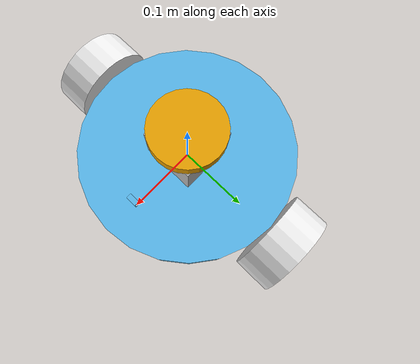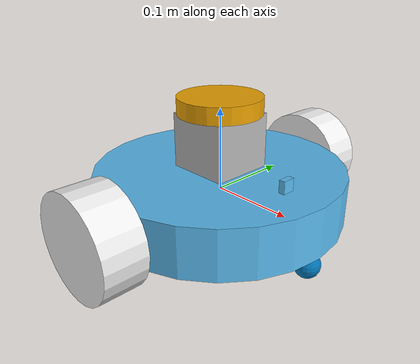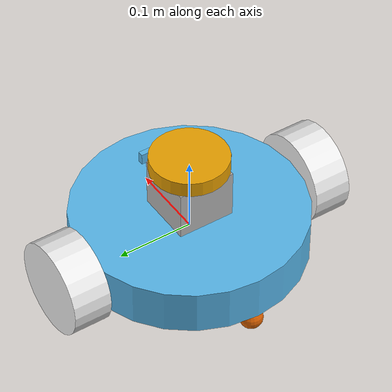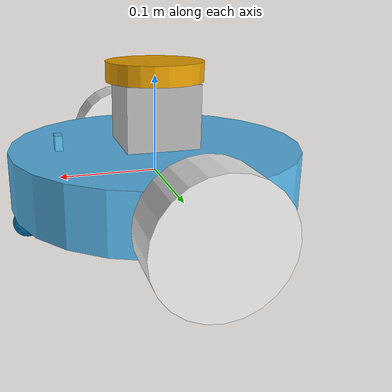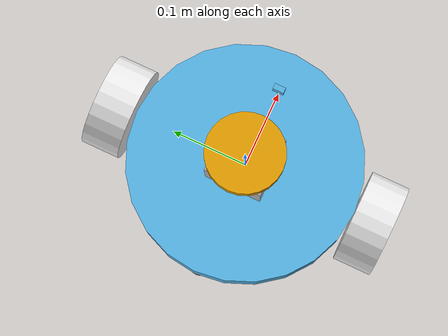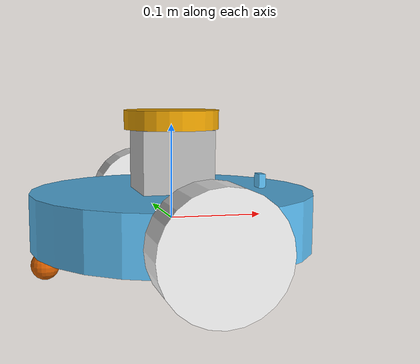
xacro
<?xml version="1.0"?>
<robot xmlns:xacro="http://www.ros.org/wiki/xacro" name="dif_rob">

    <xacro:property name="radius" value="0.15" />
    <xacro:property name="height" value="0.06" />
    <xacro:property name="mass" value="6.0" />
    <xacro:property name="wheel_radius" value="0.06" />
    <xacro:property name="casterBall_radius" value="${height/2-wheel_radius/4}" />
    <xacro:property name="lidarSup_height" value="${height/2-wheel_radius/4+0.05}"/>
    <xacro:include filename="src/robot_description/urdf/wheels.xacro"/>
    <xacro:include filename="src/robot_description/urdf/caster_ball.xacro"/>
    <xacro:include filename="src/robot_description/urdf/sensors.xacro"/>

    <link name="base_link"></link>

    <link name="chassis_link">
            <visual>
            <geometry>
                <cylinder radius="${radius}" length="${height}"/>
            </geometry>
        </visual>
        <collision>
            <geometry>
                <cylinder radius="${radius}" length="${height}"/>
            </geometry>
        </collision>
        <inertial>
            <mass value="${mass}"/>
            <inertia
                ixx="${1/12*mass*(3*(radius*radius)+height*height)}"
                ixy="0.0"
                ixz="0.0"
                iyy="${1/12*mass*(3*radius*radius+height*height)}"
                iyz="0.0"
                izz="${1/12*mass*(radius*radius)}"/>
        </inertial>
    </link>
    <joint name="chassis_to_base_link" type="fixed">
        <parent link="base_link"/>
        <child link="chassis_link"/>
        <origin xyz="0.0 0.0 0.0" />
        <axis xyz="0.0 0.0 0.0"/>
    </joint>

    <!-- Rodas -->
    <xacro:wheel prefix="right" reflect="-1" wheel_radius="${wheel_radius}" base_width="${radius}">
        <axis xyz="0 0 1"/>
    </xacro:wheel>

    <xacro:wheel prefix="left" reflect="1" wheel_radius="${wheel_radius}" base_width="${radius}">
        <axis xyz="0 0 1"/>
    </xacro:wheel>
    <gazebo reference="right_wheel">
        <mu1 value="100.0"/>
        <mu2 value="50.0"/>
    </gazebo>
    <gazebo reference="left_wheel">
        <mu1 value="100.0"/>
        <mu2 value="50.0"/>
    </gazebo>

    <!-- caster ball -->
    <xacro:caster_ball radius="${casterBall_radius}" prefix="front">
        <origin xyz="${radius-casterBall_radius} 0.0 -${height/2+wheel_radius/4}"/>
    </xacro:caster_ball>
    <xacro:caster_ball radius="${casterBall_radius}" prefix="back">
        <origin xyz="-${radius-casterBall_radius} 0.0 -${height/2+wheel_radius/4}"/>
    </xacro:caster_ball>
    <gazebo reference="caster_ball">
        <mu1 value="0.001"/>
        <mu2 value="0.001"/>
    </gazebo>

    <!-- IMU-->
    <link name="imu_link"/>
    <joint name="base_to_imu" type="fixed">
        <parent link="base_link"/>
        <child link="imu_link"/>
        <origin xyz="0.0 0.0 0.0" />
        <axis xyz="0.0 0.0 0.0"/>
    </joint>
    <xacro:imu></xacro:imu>

    <!-- Suporte para o Lidar-->
    <link name="lidarSup_link">
        <visual>
            <geometry>
                <box size="${radius/2} ${radius/2} ${lidarSup_height}"/>
            </geometry>
        </visual>
        <collision>
            <geometry>
                <box size="${radius/2} ${radius/2} ${lidarSup_height}"/>
            </geometry>
        </collision>
    </link>
    <joint name="base_to_lidarSup" type="fixed">
        <parent link="base_link"/>
        <child link="lidarSup_link"/>
        <origin xyz="0.0 0.0 ${height/2+lidarSup_height/2}" />
        <axis xyz="0.0 0.0 0.0"/>
    </joint>
    <xacro:lidar></xacro:lidar>

    <!-- Lidar-->
    <link name="lidar_link">
        <visual>
            <geometry>
                <cylinder radius="${radius/3}" length="${height/3}"/>
            </geometry>
        </visual>
        <collision>
            <geometry>
                <cylinder radius="${radius/3}" length="${height/3}"/>
            </geometry>
        </collision>
    </link>
    <joint name="base_to_lidar" type="fixed">
        <parent link="base_link"/>
        <child link="lidar_link"/>
        <origin xyz="0.0 0.0 ${height/2+lidarSup_height+height/6}" />
        <axis xyz="0.0 0.0 0.0"/>
    </joint>

    <!-- Camera-->
    <link name="camera_link">
        <visual>
            <geometry>
                <box size="${radius/20} ${radius/10} ${radius/10}"/>
            </geometry>
        </visual>
        <collision>
            <geometry>
                <box size="${radius/20} ${radius/10} ${radius/10}"/>
            </geometry>
        </collision>
    </link>
    <joint name="base_to_camera" type="fixed">
        <parent link="base_link"/>
        <child link="camera_link"/>
        <origin xyz="${radius-0.05} 0.0 ${height/2+radius/20}" />
        <axis xyz="0.0 0.0 0.0"/>
    </joint>
    <xacro:camera_macro></xacro:camera_macro>

    <xacro:differential_controller base_diameter="${radius*2}" wheel_diameter="0.4"/>

</robot>

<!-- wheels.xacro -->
<robot xmlns:xacro="http://www.ros.org/wiki/xacro">
    <xacro:macro  name="wheel" params="prefix reflect base_width wheel_radius *axis">
        <xacro:property name="wheel_len" value="0.05" />
        <xacro:property name="wheel_mass" value="0.5" />
        <link name="${prefix}_wheel">
            <visual>
                <geometry>
                    <cylinder radius="${wheel_radius}" length="${wheel_len}"/>
                </geometry>
                <origin xyz="0 0 0"/>
                <material name="white"/>
            </visual>
            <collision>
                <geometry>
                    <cylinder radius="${wheel_radius}" length="${wheel_len}"/>
                </geometry>
                <origin xyz="0 0 0"/>
            </collision>
            <inertial>
                <mass value="${wheel_mass}"/>
                <inertia
                    ixx="${1/12*wheel_mass*(3*(wheel_radius*wheel_radius)+wheel_len*wheel_len)}"
                    ixy="0.0"
                    ixz="0.0"
                    iyy="${1/12*wheel_mass*(3*wheel_radius*wheel_radius+wheel_len*wheel_len)}"
                    iyz="0.0"
                    izz="${1/12*wheel_mass*(wheel_radius*wheel_radius)}"/>
            </inertial>
        </link>
        <joint name="base_to_${prefix}_wheel" type="continuous">
            <parent link="base_link"/>
            <child link="${prefix}_wheel"/>
            <origin xyz="0 ${reflect*(base_width+wheel_len/2)} 0" rpy="${-pi/2} 0 0" />
            <xacro:insert_block name="axis" />
        </joint>
    </xacro:macro>
</robot>

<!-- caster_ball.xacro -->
<robot xmlns:xacro="http://www.ros.org/wiki/xacro">
    <xacro:macro  name="caster_ball" params="radius prefix *origin">
        <xacro:property name="caster_mass" value="0.1"/>
        <link name="${prefix}_caster_ball_link">
            <visual>
                <geometry>
                    <sphere radius="${radius}"/>
                </geometry>
                <origin xyz="0 0 0" rpy="0 0 0"/>
            </visual>
            <collision>
                <geometry>
                    <sphere radius="${radius}"/>
                </geometry>
                <origin xyz="0 0 0" rpy="0 0 0"/>
            </collision>
            <inertial>
                <mass value="${caster_mass}"/>
                <inertia
                    ixx="${2/5*caster_mass*radius*radius}"
                    ixy="0.0"
                    ixz="0.0"
                    iyy="${2/5*caster_mass*radius*radius}"
                    iyz="0.0"
                    izz="${2/5*caster_mass*radius*radius}"/>
            </inertial>
        </link>
        <joint name="base_to_${prefix}_caster_ball" type="fixed">
            <parent link="chassis_link"/>
            <child link="${prefix}_caster_ball_link"/>
            <xacro:insert_block name="origin"/>
        </joint>
    </xacro:macro>
</robot>
